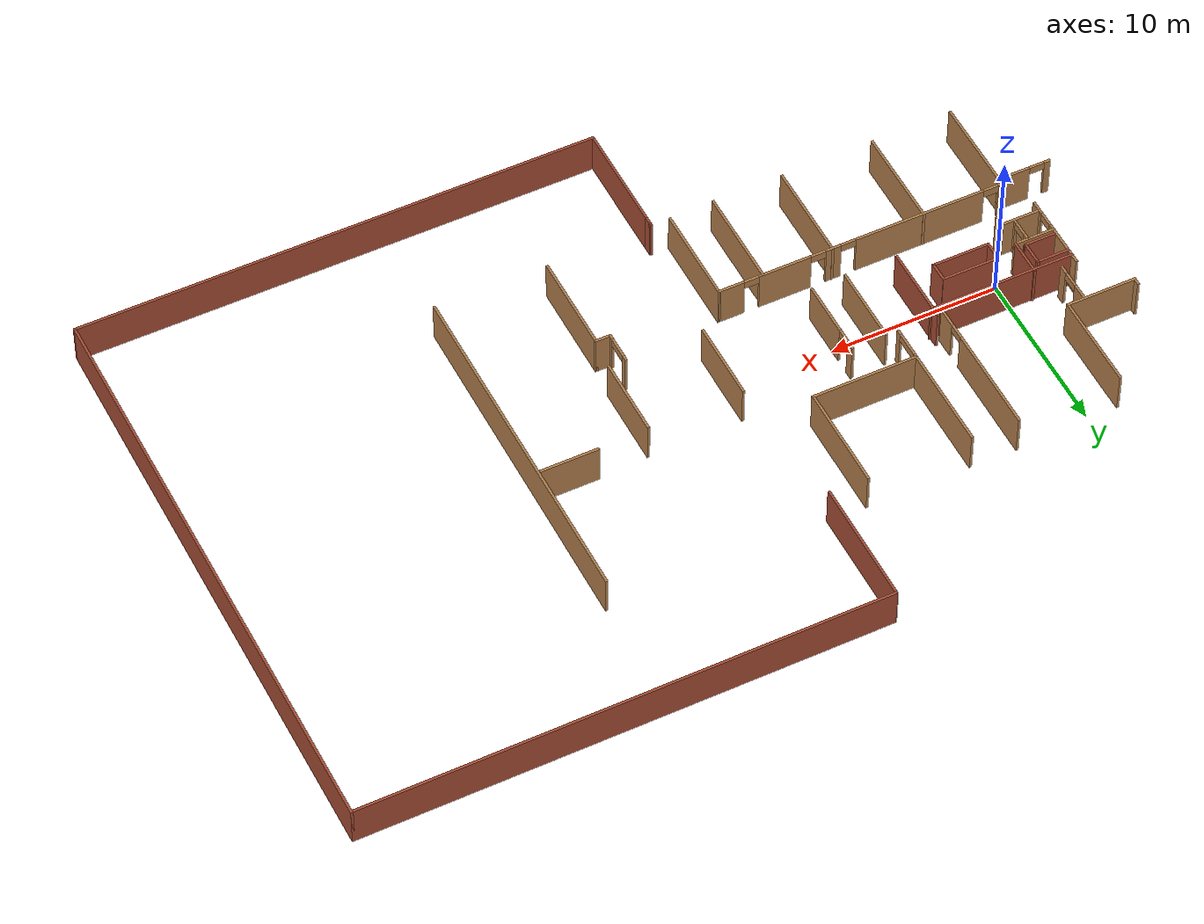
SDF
<sdf version="1.6">
 <model name="third_floor">
  <pose>-4.00866 -0.044756 0 0 -0 0</pose>
  <link name="Wall_100">
   <collision name="Wall_100_Collision">
    <geometry><box><size>4.75 0.15 2.5</size></box></geometry>
    <pose>0 0 1.25 0 -0 0</pose>
   </collision>
   <visual name="Wall_100_Visual">
    <pose>0 0 1.25 0 -0 0</pose>
    <geometry><box><size>4.75 0.15 2.5</size></box></geometry>
    <material>
     <script><uri>file://media/materials/scripts/gazebo.material</uri><name>Gazebo/Wood</name></script>
     <ambient>1 1 1 1</ambient>
    </material>
   </visual>
   <pose>11.9099 -0.263798 0 0 -0 1.5708</pose>
  </link>
  <link name="Wall_102">
   <collision name="Wall_102_Collision">
    <geometry><box><size>4.75 0.15 2.5</size></box></geometry>
    <pose>0 0 1.25 0 -0 0</pose>
   </collision>
   <visual name="Wall_102_Visual">
    <pose>0 0 1.25 0 -0 0</pose>
    <geometry><box><size>4.75 0.15 2.5</size></box></geometry>
    <material>
     <script><uri>file://media/materials/scripts/gazebo.material</uri><name>Gazebo/Bricks</name></script>
     <ambient>1 1 1 1</ambient>
    </material>
   </visual>
   <pose>8.79281 -0.211406 0 0 0 -1.5708</pose>
  </link>
  <link name="Wall_106">
   <pose>0.278929 -0.25793 0 0 0 -1.5708</pose>
   <visual name="Wall_106_Visual_0">
    <pose>-0.899616 0 1.25 0 -0 0</pose>
    <geometry><box><size>2.95077 0.15 2.5</size></box></geometry>
    <material>
     <script><uri>file://media/materials/scripts/gazebo.material</uri><name>Gazebo/Wood</name></script>
     <ambient>1 1 1 1</ambient>
    </material>
   </visual>
   <collision name="Wall_106_Collision_0">
    <geometry><box><size>2.95077 0.15 2.5</size></box></geometry>
    <pose>-0.899616 0 1.25 0 -0 0</pose>
   </collision>
   <visual name="Wall_106_Visual_1">
    <pose>1.92538 0 1.25 0 -0 0</pose>
    <geometry><box><size>0.899232 0.15 2.5</size></box></geometry>
    <material>
     <script><uri>file://media/materials/scripts/gazebo.material</uri><name>Gazebo/Wood</name></script>
     <ambient>1 1 1 1</ambient>
    </material>
   </visual>
   <collision name="Wall_106_Collision_1">
    <geometry><box><size>0.899232 0.15 2.5</size></box></geometry>
    <pose>1.92538 0 1.25 0 -0 0</pose>
   </collision>
   <visual name="Wall_106_Visual_2">
    <pose>1.02577 0 2.25 0 -0 0</pose>
    <geometry><box><size>0.9 0.15 0.5</size></box></geometry>
    <material>
     <script><uri>file://media/materials/scripts/gazebo.material</uri><name>Gazebo/Wood</name></script>
     <ambient>1 1 1 1</ambient>
    </material>
   </visual>
   <collision name="Wall_106_Collision_2">
    <geometry><box><size>0.9 0.15 0.5</size></box></geometry>
    <pose>1.02577 0 2.25 0 -0 0</pose>
   </collision>
  </link>
  <link name="Wall_125">
   <collision name="Wall_125_Collision">
    <geometry><box><size>2.47053 0.15 2.5</size></box></geometry>
    <pose>0 0 1.25 0 -0 0</pose>
   </collision>
   <visual name="Wall_125_Visual">
    <pose>0 0 1.25 0 -0 0</pose>
    <geometry><box><size>2.47053 0.15 2.5</size></box></geometry>
    <material>
     <script><uri>file://media/materials/scripts/gazebo.material</uri><name>Gazebo/Wood</name></script>
     <ambient>1 1 1 1</ambient>
    </material>
   </visual>
   <pose>1.43919 -2.00551 0 0 -0 0</pose>
  </link>
  <link name="Wall_126">
   <collision name="Wall_126_Collision">
    <geometry><box><size>0.685462 0.15 2.5</size></box></geometry>
    <pose>0 0 1.25 0 -0 0</pose>
   </collision>
   <visual name="Wall_126_Visual">
    <pose>0 0 1.25 0 -0 0</pose>
    <geometry><box><size>0.685462 0.15 2.5</size></box></geometry>
    <material>
     <script><uri>file://media/materials/scripts/gazebo.material</uri><name>Gazebo/Wood</name></script>
     <ambient>1 1 1 1</ambient>
    </material>
   </visual>
   <pose>2.61019 -2.27285 0 0 0 -1.5591</pose>
  </link>
  <link name="Wall_140">
   <collision name="Wall_140_Collision">
    <geometry><box><size>2 0.15 2.5</size></box></geometry>
    <pose>0 0 1.25 0 -0 0</pose>
   </collision>
   <visual name="Wall_140_Visual">
    <pose>0 0 1.25 0 -0 0</pose>
    <geometry><box><size>2 0.15 2.5</size></box></geometry>
    <material>
     <script><uri>file://media/materials/scripts/gazebo.material</uri><name>Gazebo/Bricks</name></script>
     <ambient>1 1 1 1</ambient>
    </material>
   </visual>
   <pose>1.24453 -0.176941 0 0 -0 0</pose>
  </link>
  <link name="Wall_141">
   <collision name="Wall_141_Collision">
    <geometry><box><size>1.5 0.15 2.5</size></box></geometry>
    <pose>0 0 1.25 0 -0 0</pose>
   </collision>
   <visual name="Wall_141_Visual">
    <pose>0 0 1.25 0 -0 0</pose>
    <geometry><box><size>1.5 0.15 2.5</size></box></geometry>
    <material>
     <script><uri>file://media/materials/scripts/gazebo.material</uri><name>Gazebo/Bricks</name></script>
     <ambient>1 1 1 1</ambient>
    </material>
   </visual>
   <pose>2.16953 0.498059 0 0 -0 1.5708</pose>
  </link>
  <link name="Wall_142">
   <collision name="Wall_142_Collision">
    <geometry><box><size>2 0.15 2.5</size></box></geometry>
    <pose>0 0 1.25 0 -0 0</pose>
   </collision>
   <visual name="Wall_142_Visual">
    <pose>0 0 1.25 0 -0 0</pose>
    <geometry><box><size>2 0.15 2.5</size></box></geometry>
    <material>
     <script><uri>file://media/materials/scripts/gazebo.material</uri><name>Gazebo/Bricks</name></script>
     <ambient>1 1 1 1</ambient>
    </material>
   </visual>
   <pose>1.24453 1.17306 0 0 -0 3.14159</pose>
  </link>
  <link name="Wall_144">
   <pose>1.85514 -1.2369 0 0 0 -1.5708</pose>
   <visual name="Wall_144_Visual_0">
    <pose>-0.55326 0 1.25 0 -0 0</pose>
    <geometry><box><size>0.393481 0.15 2.5</size></box></geometry>
    <material>
     <script><uri>file://media/materials/scripts/gazebo.material</uri><name>Gazebo/Wood</name></script>
     <ambient>1 1 1 1</ambient>
    </material>
   </visual>
   <collision name="Wall_144_Collision_0">
    <geometry><box><size>0.393481 0.15 2.5</size></box></geometry>
    <pose>-0.55326 0 1.25 0 -0 0</pose>
   </collision>
   <visual name="Wall_144_Visual_1">
    <pose>0.64674 0 1.25 0 -0 0</pose>
    <geometry><box><size>0.206519 0.15 2.5</size></box></geometry>
    <material>
     <script><uri>file://media/materials/scripts/gazebo.material</uri><name>Gazebo/Wood</name></script>
     <ambient>1 1 1 1</ambient>
    </material>
   </visual>
   <collision name="Wall_144_Collision_1">
    <geometry><box><size>0.206519 0.15 2.5</size></box></geometry>
    <pose>0.64674 0 1.25 0 -0 0</pose>
   </collision>
   <visual name="Wall_144_Visual_2">
    <pose>0.093481 0 2.25 0 -0 0</pose>
    <geometry><box><size>0.9 0.15 0.5</size></box></geometry>
    <material>
     <script><uri>file://media/materials/scripts/gazebo.material</uri><name>Gazebo/Wood</name></script>
     <ambient>1 1 1 1</ambient>
    </material>
   </visual>
   <collision name="Wall_144_Collision_2">
    <geometry><box><size>0.9 0.15 0.5</size></box></geometry>
    <pose>0.093481 0 2.25 0 -0 0</pose>
   </collision>
  </link>
  <link name="Wall_15">
   <collision name="Wall_15_Collision">
    <geometry><box><size>7.5 0.15 2.5</size></box></geometry>
    <pose>0 0 1.25 0 -0 0</pose>
   </collision>
   <visual name="Wall_15_Visual">
    <pose>0 0 1.25 0 -0 0</pose>
    <geometry><box><size>7.5 0.15 2.5</size></box></geometry>
    <material>
     <script><uri>file://media/materials/scripts/gazebo.material</uri><name>Gazebo/Bricks</name></script>
     <ambient>1 1 1 1</ambient>
    </material>
   </visual>
   <pose>19.6276 13.875 0 0 -0 1.5708</pose>
  </link>
  <link name="Wall_16">
   <collision name="Wall_16_Collision">
    <geometry><box><size>31 0.15 2.5</size></box></geometry>
    <pose>0 0 1.25 0 -0 0</pose>
   </collision>
   <visual name="Wall_16_Visual">
    <pose>0 0 1.25 0 -0 0</pose>
    <geometry><box><size>31 0.15 2.5</size></box></geometry>
    <material>
     <script><uri>file://media/materials/scripts/gazebo.material</uri><name>Gazebo/Bricks</name></script>
     <ambient>1 1 1 1</ambient>
    </material>
   </visual>
   <pose>35.0526 17.55 0 0 -0 0</pose>
  </link>
  <link name="Wall_17">
   <collision name="Wall_17_Collision">
    <geometry><box><size>35.25 0.15 2.5</size></box></geometry>
    <pose>0 0 1.25 0 -0 0</pose>
   </collision>
   <visual name="Wall_17_Visual">
    <pose>0 0 1.25 0 -0 0</pose>
    <geometry><box><size>35.25 0.15 2.5</size></box></geometry>
    <material>
     <script><uri>file://media/materials/scripts/gazebo.material</uri><name>Gazebo/Bricks</name></script>
     <ambient>1 1 1 1</ambient>
    </material>
   </visual>
   <pose>50.4776 -1e-06 0 0 0 -1.5708</pose>
  </link>
  <link name="Wall_18">
   <collision name="Wall_18_Collision">
    <geometry><box><size>31 0.15 2.5</size></box></geometry>
    <pose>0 0 1.25 0 -0 0</pose>
   </collision>
   <visual name="Wall_18_Visual">
    <pose>0 0 1.25 0 -0 0</pose>
    <geometry><box><size>31 0.15 2.5</size></box></geometry>
    <material>
     <script><uri>file://media/materials/scripts/gazebo.material</uri><name>Gazebo/Bricks</name></script>
     <ambient>1 1 1 1</ambient>
    </material>
   </visual>
   <pose>35.0526 -17.55 0 0 -0 3.14159</pose>
  </link>
  <link name="Wall_19">
   <collision name="Wall_19_Collision">
    <geometry><box><size>6.75 0.15 2.5</size></box></geometry>
    <pose>0 0 1.25 0 -0 0</pose>
   </collision>
   <visual name="Wall_19_Visual">
    <pose>0 0 1.25 0 -0 0</pose>
    <geometry><box><size>6.75 0.15 2.5</size></box></geometry>
    <material>
     <script><uri>file://media/materials/scripts/gazebo.material</uri><name>Gazebo/Bricks</name></script>
     <ambient>1 1 1 1</ambient>
    </material>
   </visual>
   <pose>19.6276 -14.25 0 0 -0 1.5708</pose>
  </link>
  <link name="Wall_20">
   <collision name="Wall_20_Collision">
    <geometry><box><size>0.5 0.15 2.5</size></box></geometry>
    <pose>0 0 1.25 0 -0 0</pose>
   </collision>
   <visual name="Wall_20_Visual">
    <pose>0 0 1.25 0 -0 0</pose>
    <geometry><box><size>0.5 0.15 2.5</size></box></geometry>
    <material>
     <script><uri>file://media/materials/scripts/gazebo.material</uri><name>Gazebo/Bricks</name></script>
     <ambient>1 1 1 1</ambient>
    </material>
   </visual>
   <pose>19.6276 -10.775 0 0 -0 1.5708</pose>
  </link>
  <link name="Wall_206">
   <collision name="Wall_206_Collision">
    <geometry><box><size>0.5 0.15 2.5</size></box></geometry>
    <pose>0 0 1.25 0 -0 0</pose>
   </collision>
   <visual name="Wall_206_Visual">
    <pose>0 0 1.25 0 -0 0</pose>
    <geometry><box><size>0.5 0.15 2.5</size></box></geometry>
    <material>
     <script><uri>file://media/materials/scripts/gazebo.material</uri><name>Gazebo/Wood</name></script>
     <ambient>1 1 1 1</ambient>
    </material>
   </visual>
   <pose>-1.89466 4.73513 0 0 0 -1.5708</pose>
  </link>
  <link name="Wall_207">
   <collision name="Wall_207_Collision">
    <geometry><box><size>4.25 0.15 2.5</size></box></geometry>
    <pose>0 0 1.25 0 -0 0</pose>
   </collision>
   <visual name="Wall_207_Visual">
    <pose>0 0 1.25 0 -0 0</pose>
    <geometry><box><size>4.25 0.15 2.5</size></box></geometry>
    <material>
     <script><uri>file://media/materials/scripts/gazebo.material</uri><name>Gazebo/Wood</name></script>
     <ambient>1 1 1 1</ambient>
    </material>
   </visual>
   <pose>0.155343 4.56013 0 0 -0 0</pose>
  </link>
  <link name="Wall_208">
   <collision name="Wall_208_Collision">
    <geometry><box><size>5.75 0.15 2.5</size></box></geometry>
    <pose>0 0 1.25 0 -0 0</pose>
   </collision>
   <visual name="Wall_208_Visual">
    <pose>0 0 1.25 0 -0 0</pose>
    <geometry><box><size>5.75 0.15 2.5</size></box></geometry>
    <material>
     <script><uri>file://media/materials/scripts/gazebo.material</uri><name>Gazebo/Wood</name></script>
     <ambient>1 1 1 1</ambient>
    </material>
   </visual>
   <pose>2.20534 7.36013 0 0 -0 1.5708</pose>
  </link>
  <link name="Wall_210">
   <pose>8.42243 6.14743 0 0 0 -1.5708</pose>
   <visual name="Wall_210_Visual_0">
    <pose>-1.03866 0 1.25 0 -0 0</pose>
    <geometry><box><size>6.42268 0.15 2.5</size></box></geometry>
    <material>
     <script><uri>file://media/materials/scripts/gazebo.material</uri><name>Gazebo/Wood</name></script>
     <ambient>1 1 1 1</ambient>
    </material>
   </visual>
   <collision name="Wall_210_Collision_0">
    <geometry><box><size>6.42268 0.15 2.5</size></box></geometry>
    <pose>-1.03866 0 1.25 0 -0 0</pose>
   </collision>
   <visual name="Wall_210_Visual_1">
    <pose>3.66134 0 1.25 0 -0 0</pose>
    <geometry><box><size>1.17732 0.15 2.5</size></box></geometry>
    <material>
     <script><uri>file://media/materials/scripts/gazebo.material</uri><name>Gazebo/Wood</name></script>
     <ambient>1 1 1 1</ambient>
    </material>
   </visual>
   <collision name="Wall_210_Collision_1">
    <geometry><box><size>1.17732 0.15 2.5</size></box></geometry>
    <pose>3.66134 0 1.25 0 -0 0</pose>
   </collision>
   <visual name="Wall_210_Visual_2">
    <pose>2.62268 0 2.25 0 -0 0</pose>
    <geometry><box><size>0.9 0.15 0.5</size></box></geometry>
    <material>
     <script><uri>file://media/materials/scripts/gazebo.material</uri><name>Gazebo/Wood</name></script>
     <ambient>1 1 1 1</ambient>
    </material>
   </visual>
   <collision name="Wall_210_Collision_2">
    <geometry><box><size>0.9 0.15 0.5</size></box></geometry>
    <pose>2.62268 0 2.25 0 -0 0</pose>
   </collision>
  </link>
  <link name="Wall_212">
   <pose>11.2002 6.20028 0 0 0 -1.5708</pose>
   <visual name="Wall_212_Visual_0">
    <pose>-0.906775 0 1.25 0 -0 0</pose>
    <geometry><box><size>6.43645 0.15 2.5</size></box></geometry>
    <material>
     <script><uri>file://media/materials/scripts/gazebo.material</uri><name>Gazebo/Wood</name></script>
     <ambient>1 1 1 1</ambient>
    </material>
   </visual>
   <collision name="Wall_212_Collision_0">
    <geometry><box><size>6.43645 0.15 2.5</size></box></geometry>
    <pose>-0.906775 0 1.25 0 -0 0</pose>
   </collision>
   <visual name="Wall_212_Visual_1">
    <pose>3.95675 0 1.25 0 -0 0</pose>
    <geometry><box><size>0.336496 0.15 2.5</size></box></geometry>
    <material>
     <script><uri>file://media/materials/scripts/gazebo.material</uri><name>Gazebo/Wood</name></script>
     <ambient>1 1 1 1</ambient>
    </material>
   </visual>
   <collision name="Wall_212_Collision_1">
    <geometry><box><size>0.336496 0.15 2.5</size></box></geometry>
    <pose>3.95675 0 1.25 0 -0 0</pose>
   </collision>
   <visual name="Wall_212_Visual_2">
    <pose>3.04998 0 2.25 0 -0 0</pose>
    <geometry><box><size>1.47705 0.15 0.5</size></box></geometry>
    <material>
     <script><uri>file://media/materials/scripts/gazebo.material</uri><name>Gazebo/Wood</name></script>
     <ambient>1 1 1 1</ambient>
    </material>
   </visual>
   <collision name="Wall_212_Collision_2">
    <geometry><box><size>1.47705 0.15 0.5</size></box></geometry>
    <pose>3.04998 0 2.25 0 -0 0</pose>
   </collision>
  </link>
  <link name="Wall_214">
   <collision name="Wall_214_Collision">
    <geometry><box><size>6.25 0.15 2.5</size></box></geometry>
    <pose>0 0 1.25 0 -0 0</pose>
   </collision>
   <visual name="Wall_214_Visual">
    <pose>0 0 1.25 0 -0 0</pose>
    <geometry><box><size>6.25 0.15 2.5</size></box></geometry>
    <material>
     <script><uri>file://media/materials/scripts/gazebo.material</uri><name>Gazebo/Wood</name></script>
     <ambient>1 1 1 1</ambient>
    </material>
   </visual>
   <pose>14.3223 4.1176 0 0 -0 0</pose>
  </link>
  <link name="Wall_215">
   <collision name="Wall_215_Collision">
    <geometry><box><size>6.25 0.15 2.5</size></box></geometry>
    <pose>0 0 1.25 0 -0 0</pose>
   </collision>
   <visual name="Wall_215_Visual">
    <pose>0 0 1.25 0 -0 0</pose>
    <geometry><box><size>6.25 0.15 2.5</size></box></geometry>
    <material>
     <script><uri>file://media/materials/scripts/gazebo.material</uri><name>Gazebo/Wood</name></script>
     <ambient>1 1 1 1</ambient>
    </material>
   </visual>
   <pose>17.3723 7.1676 0 0 -0 1.5708</pose>
  </link>
  <link name="Wall_218">
   <collision name="Wall_218_Collision">
    <geometry><box><size>3.5 0.15 2.5</size></box></geometry>
    <pose>0 0 1.25 0 -0 0</pose>
   </collision>
   <visual name="Wall_218_Visual">
    <pose>0 0 1.25 0 -0 0</pose>
    <geometry><box><size>3.5 0.15 2.5</size></box></geometry>
    <material>
     <script><uri>file://media/materials/scripts/gazebo.material</uri><name>Gazebo/Wood</name></script>
     <ambient>1 1 1 1</ambient>
    </material>
   </visual>
   <pose>30.7997 2.23126 0 0 -0 0</pose>
  </link>
  <link name="Wall_22">
   <collision name="Wall_22_Collision">
    <geometry><box><size>0.25 0.15 2.5</size></box></geometry>
    <pose>0 0 1.25 0 -0 0</pose>
   </collision>
   <visual name="Wall_22_Visual">
    <pose>0 0 1.25 0 -0 0</pose>
    <geometry><box><size>0.25 0.15 2.5</size></box></geometry>
    <material>
     <script><uri>file://media/materials/scripts/gazebo.material</uri><name>Gazebo/Bricks</name></script>
     <ambient>1 1 1 1</ambient>
    </material>
   </visual>
   <pose>19.6276 -10.55 0 0 -0 1.5708</pose>
  </link>
  <link name="Wall_222">
   <pose>1.18415 3.29945 0 0 0 -1.5708</pose>
   <visual name="Wall_222_Visual_0">
    <pose>-0.75534 0 1.25 0 -0 0</pose>
    <geometry><box><size>0.989321 0.15 2.5</size></box></geometry>
    <material>
     <script><uri>file://media/materials/scripts/gazebo.material</uri><name>Gazebo/Wood</name></script>
     <ambient>1 1 1 1</ambient>
    </material>
   </visual>
   <collision name="Wall_222_Collision_0">
    <geometry><box><size>0.989321 0.15 2.5</size></box></geometry>
    <pose>-0.75534 0 1.25 0 -0 0</pose>
   </collision>
   <visual name="Wall_222_Visual_1">
    <pose>0.992127 0 1.25 0 -0 0</pose>
    <geometry><box><size>0.515747 0.15 2.5</size></box></geometry>
    <material>
     <script><uri>file://media/materials/scripts/gazebo.material</uri><name>Gazebo/Wood</name></script>
     <ambient>1 1 1 1</ambient>
    </material>
   </visual>
   <collision name="Wall_222_Collision_1">
    <geometry><box><size>0.515747 0.15 2.5</size></box></geometry>
    <pose>0.992127 0 1.25 0 -0 0</pose>
   </collision>
   <visual name="Wall_222_Visual_2">
    <pose>0.236787 0 2.25 0 -0 0</pose>
    <geometry><box><size>0.994932 0.15 0.5</size></box></geometry>
    <material>
     <script><uri>file://media/materials/scripts/gazebo.material</uri><name>Gazebo/Wood</name></script>
     <ambient>1 1 1 1</ambient>
    </material>
   </visual>
   <collision name="Wall_222_Collision_2">
    <geometry><box><size>0.994932 0.15 0.5</size></box></geometry>
    <pose>0.236787 0 2.25 0 -0 0</pose>
   </collision>
  </link>
  <link name="Wall_235">
   <collision name="Wall_235_Collision">
    <geometry><box><size>8.75 0.15 2.5</size></box></geometry>
    <pose>0 0 1.25 0 -0 0</pose>
   </collision>
   <visual name="Wall_235_Visual">
    <pose>0 0 1.25 0 -0 0</pose>
    <geometry><box><size>8.75 0.15 2.5</size></box></geometry>
    <material>
     <script><uri>file://media/materials/scripts/gazebo.material</uri><name>Gazebo/Bricks</name></script>
     <ambient>1 1 1 1</ambient>
    </material>
   </visual>
   <pose>4.57762 1.55039 0 0 -0 0</pose>
  </link>
  <link name="Wall_237">
   <collision name="Wall_237_Collision">
    <geometry><box><size>2.25 0.15 2.5</size></box></geometry>
    <pose>0 0 1.25 0 -0 0</pose>
   </collision>
   <visual name="Wall_237_Visual">
    <pose>0 0 1.25 0 -0 0</pose>
    <geometry><box><size>2.25 0.15 2.5</size></box></geometry>
    <material>
     <script><uri>file://media/materials/scripts/gazebo.material</uri><name>Gazebo/Bricks</name></script>
     <ambient>1 1 1 1</ambient>
    </material>
   </visual>
   <pose>2.62716 0.572136 0 0 0 -1.5708</pose>
  </link>
  <link name="Wall_238">
   <collision name="Wall_238_Collision">
    <geometry><box><size>2.5 0.15 2.5</size></box></geometry>
    <pose>0 0 1.25 0 -0 0</pose>
   </collision>
   <visual name="Wall_238_Visual">
    <pose>0 0 1.25 0 -0 0</pose>
    <geometry><box><size>2.5 0.15 2.5</size></box></geometry>
    <material>
     <script><uri>file://media/materials/scripts/gazebo.material</uri><name>Gazebo/Wood</name></script>
     <ambient>1 1 1 1</ambient>
    </material>
   </visual>
   <pose>1.45216 -0.477864 0 0 -0 3.14159</pose>
  </link>
  <link name="Wall_247">
   <collision name="Wall_247_Collision">
    <geometry><box><size>1.25 0.15 2.5</size></box></geometry>
    <pose>0 0 1.25 0 -0 0</pose>
   </collision>
   <visual name="Wall_247_Visual">
    <pose>0 0 1.25 0 -0 0</pose>
    <geometry><box><size>1.25 0.15 2.5</size></box></geometry>
    <material>
     <script><uri>file://media/materials/scripts/gazebo.material</uri><name>Gazebo/Bricks</name></script>
     <ambient>1 1 1 1</ambient>
    </material>
   </visual>
   <pose>3.95505 -0.559625 0 0 0 -1.5708</pose>
  </link>
  <link name="Wall_248">
   <collision name="Wall_248_Collision">
    <geometry><box><size>3.5 0.15 2.5</size></box></geometry>
    <pose>0 0 1.25 0 -0 0</pose>
   </collision>
   <visual name="Wall_248_Visual">
    <pose>0 0 1.25 0 -0 0</pose>
    <geometry><box><size>3.5 0.15 2.5</size></box></geometry>
    <material>
     <script><uri>file://media/materials/scripts/gazebo.material</uri><name>Gazebo/Bricks</name></script>
     <ambient>1 1 1 1</ambient>
    </material>
   </visual>
   <pose>5.63005 -1.10963 0 0 -0 0</pose>
  </link>
  <link name="Wall_249">
   <collision name="Wall_249_Collision">
    <geometry><box><size>1.25 0.15 2.5</size></box></geometry>
    <pose>0 0 1.25 0 -0 0</pose>
   </collision>
   <visual name="Wall_249_Visual">
    <pose>0 0 1.25 0 -0 0</pose>
    <geometry><box><size>1.25 0.15 2.5</size></box></geometry>
    <material>
     <script><uri>file://media/materials/scripts/gazebo.material</uri><name>Gazebo/Bricks</name></script>
     <ambient>1 1 1 1</ambient>
    </material>
   </visual>
   <pose>7.30505 -0.559625 0 0 -0 1.5708</pose>
  </link>
  <link name="Wall_250">
   <collision name="Wall_250_Collision">
    <geometry><box><size>3.5 0.15 2.5</size></box></geometry>
    <pose>0 0 1.25 0 -0 0</pose>
   </collision>
   <visual name="Wall_250_Visual">
    <pose>0 0 1.25 0 -0 0</pose>
    <geometry><box><size>3.5 0.15 2.5</size></box></geometry>
    <material>
     <script><uri>file://media/materials/scripts/gazebo.material</uri><name>Gazebo/Bricks</name></script>
     <ambient>1 1 1 1</ambient>
    </material>
   </visual>
   <pose>5.63005 -0.009625 0 0 -0 3.14159</pose>
  </link>
  <link name="Wall_31">
   <collision name="Wall_31_Collision">
    <geometry><box><size>4.75 0.15 2.5</size></box></geometry>
    <pose>0 0 1.25 0 -0 0</pose>
   </collision>
   <visual name="Wall_31_Visual">
    <pose>0 0 1.25 0 -0 0</pose>
    <geometry><box><size>4.75 0.15 2.5</size></box></geometry>
    <material>
     <script><uri>file://media/materials/scripts/gazebo.material</uri><name>Gazebo/Wood</name></script>
     <ambient>1 1 1 1</ambient>
    </material>
   </visual>
   <pose>26.1224 -0.238889 0 0 0 -1.5708</pose>
  </link>
  <link name="Wall_36">
   <collision name="Wall_36_Collision">
    <geometry><box><size>20.75 0.15 2.5</size></box></geometry>
    <pose>0 0 1.25 0 -0 0</pose>
   </collision>
   <visual name="Wall_36_Visual">
    <pose>0 0 1.25 0 -0 0</pose>
    <geometry><box><size>20.75 0.15 2.5</size></box></geometry>
    <material>
     <script><uri>file://media/materials/scripts/gazebo.material</uri><name>Gazebo/Wood</name></script>
     <ambient>1 1 1 1</ambient>
    </material>
   </visual>
   <pose>32.6341 -0.084723 0 0 0 -1.5708</pose>
  </link>
  <link name="Wall_65">
   <pose>-0.385219 -4.94504 0 0 -0 0</pose>
   <visual name="Wall_65_Visual_0">
    <pose>-1.43177 0 1.25 0 -0 0</pose>
    <geometry><box><size>0.386464 0.15 2.5</size></box></geometry>
    <material>
     <script><uri>file://media/materials/scripts/gazebo.material</uri><name>Gazebo/Wood</name></script>
     <ambient>1 1 1 1</ambient>
    </material>
   </visual>
   <collision name="Wall_65_Collision_0">
    <geometry><box><size>0.386464 0.15 2.5</size></box></geometry>
    <pose>-1.43177 0 1.25 0 -0 0</pose>
   </collision>
   <visual name="Wall_65_Visual_1">
    <pose>0.643232 0 1.25 0 -0 0</pose>
    <geometry><box><size>1.96354 0.15 2.5</size></box></geometry>
    <material>
     <script><uri>file://media/materials/scripts/gazebo.material</uri><name>Gazebo/Wood</name></script>
     <ambient>1 1 1 1</ambient>
    </material>
   </visual>
   <collision name="Wall_65_Collision_1">
    <geometry><box><size>1.96354 0.15 2.5</size></box></geometry>
    <pose>0.643232 0 1.25 0 -0 0</pose>
   </collision>
   <visual name="Wall_65_Visual_2">
    <pose>-0.788536 0 2.25 0 -0 0</pose>
    <geometry><box><size>0.9 0.15 0.5</size></box></geometry>
    <material>
     <script><uri>file://media/materials/scripts/gazebo.material</uri><name>Gazebo/Wood</name></script>
     <ambient>1 1 1 1</ambient>
    </material>
   </visual>
   <collision name="Wall_65_Collision_2">
    <geometry><box><size>0.9 0.15 0.5</size></box></geometry>
    <pose>-0.788536 0 2.25 0 -0 0</pose>
   </collision>
  </link>
  <link name="Wall_68">
   <collision name="Wall_68_Collision">
    <geometry><box><size>0.5 0.15 2.5</size></box></geometry>
    <pose>0 0 1.25 0 -0 0</pose>
   </collision>
   <visual name="Wall_68_Visual">
    <pose>0 0 1.25 0 -0 0</pose>
    <geometry><box><size>0.5 0.15 2.5</size></box></geometry>
    <material>
     <script><uri>file://media/materials/scripts/gazebo.material</uri><name>Gazebo/Grey</name></script>
     <ambient>1 1 1 1</ambient>
    </material>
   </visual>
   <pose>1.16478 -4.77004 0 0 -0 1.5708</pose>
  </link>
  <link name="Wall_69">
   <pose>9.83978 -4.59504 0 0 -0 0</pose>
   <visual name="Wall_69_Visual_0">
    <pose>-8.57685 0 1.25 0 -0 0</pose>
    <geometry><box><size>0.346295 0.15 2.5</size></box></geometry>
    <material>
     <script><uri>file://media/materials/scripts/gazebo.material</uri><name>Gazebo/Wood</name></script>
     <ambient>1 1 1 1</ambient>
    </material>
   </visual>
   <collision name="Wall_69_Collision_0">
    <geometry><box><size>0.346295 0.15 2.5</size></box></geometry>
    <pose>-8.57685 0 1.25 0 -0 0</pose>
   </collision>
   <visual name="Wall_69_Visual_1">
    <pose>-3.56557 0 1.25 0 -0 0</pose>
    <geometry><box><size>7.87626 0.15 2.5</size></box></geometry>
    <material>
     <script><uri>file://media/materials/scripts/gazebo.material</uri><name>Gazebo/Wood</name></script>
     <ambient>1 1 1 1</ambient>
    </material>
   </visual>
   <collision name="Wall_69_Collision_1">
    <geometry><box><size>7.87626 0.15 2.5</size></box></geometry>
    <pose>-3.56557 0 1.25 0 -0 0</pose>
   </collision>
   <visual name="Wall_69_Visual_2">
    <pose>1.73576 0 1.25 0 -0 0</pose>
    <geometry><box><size>0.926411 0.15 2.5</size></box></geometry>
    <material>
     <script><uri>file://media/materials/scripts/gazebo.material</uri><name>Gazebo/Wood</name></script>
     <ambient>1 1 1 1</ambient>
    </material>
   </visual>
   <collision name="Wall_69_Collision_2">
    <geometry><box><size>0.926411 0.15 2.5</size></box></geometry>
    <pose>1.73576 0 1.25 0 -0 0</pose>
   </collision>
   <visual name="Wall_69_Visual_3">
    <pose>4.67699 0 1.25 0 -0 0</pose>
    <geometry><box><size>3.15605 0.15 2.5</size></box></geometry>
    <material>
     <script><uri>file://media/materials/scripts/gazebo.material</uri><name>Gazebo/Wood</name></script>
     <ambient>1 1 1 1</ambient>
    </material>
   </visual>
   <collision name="Wall_69_Collision_3">
    <geometry><box><size>3.15605 0.15 2.5</size></box></geometry>
    <pose>4.67699 0 1.25 0 -0 0</pose>
   </collision>
   <visual name="Wall_69_Visual_4">
    <pose>7.95251 0 1.25 0 -0 0</pose>
    <geometry><box><size>1.59498 0.15 2.5</size></box></geometry>
    <material>
     <script><uri>file://media/materials/scripts/gazebo.material</uri><name>Gazebo/Wood</name></script>
     <ambient>1 1 1 1</ambient>
    </material>
   </visual>
   <collision name="Wall_69_Collision_4">
    <geometry><box><size>1.59498 0.15 2.5</size></box></geometry>
    <pose>7.95251 0 1.25 0 -0 0</pose>
   </collision>
   <visual name="Wall_69_Visual_5">
    <pose>-7.95371 0 2.25 0 -0 0</pose>
    <geometry><box><size>0.9 0.15 0.5</size></box></geometry>
    <material>
     <script><uri>file://media/materials/scripts/gazebo.material</uri><name>Gazebo/Wood</name></script>
     <ambient>1 1 1 1</ambient>
    </material>
   </visual>
   <collision name="Wall_69_Collision_5">
    <geometry><box><size>0.9 0.15 0.5</size></box></geometry>
    <pose>-7.95371 0 2.25 0 -0 0</pose>
   </collision>
   <visual name="Wall_69_Visual_6">
    <pose>0.822554 0 2.25 0 -0 0</pose>
    <geometry><box><size>0.9 0.15 0.5</size></box></geometry>
    <material>
     <script><uri>file://media/materials/scripts/gazebo.material</uri><name>Gazebo/Wood</name></script>
     <ambient>1 1 1 1</ambient>
    </material>
   </visual>
   <collision name="Wall_69_Collision_6">
    <geometry><box><size>0.9 0.15 0.5</size></box></geometry>
    <pose>0.822554 0 2.25 0 -0 0</pose>
   </collision>
   <visual name="Wall_69_Visual_7">
    <pose>2.64897 0 2.25 0 -0 0</pose>
    <geometry><box><size>0.9 0.15 0.5</size></box></geometry>
    <material>
     <script><uri>file://media/materials/scripts/gazebo.material</uri><name>Gazebo/Wood</name></script>
     <ambient>1 1 1 1</ambient>
    </material>
   </visual>
   <collision name="Wall_69_Collision_7">
    <geometry><box><size>0.9 0.15 0.5</size></box></geometry>
    <pose>2.64897 0 2.25 0 -0 0</pose>
   </collision>
   <visual name="Wall_69_Visual_8">
    <pose>6.70502 0 2.25 0 -0 0</pose>
    <geometry><box><size>0.9 0.15 0.5</size></box></geometry>
    <material>
     <script><uri>file://media/materials/scripts/gazebo.material</uri><name>Gazebo/Wood</name></script>
     <ambient>1 1 1 1</ambient>
    </material>
   </visual>
   <collision name="Wall_69_Collision_8">
    <geometry><box><size>0.9 0.15 0.5</size></box></geometry>
    <pose>6.70502 0 2.25 0 -0 0</pose>
   </collision>
  </link>
  <link name="Wall_70">
   <collision name="Wall_70_Collision">
    <geometry><box><size>5.92455 0.15 2.5</size></box></geometry>
    <pose>0 0 1.25 0 -0 0</pose>
   </collision>
   <visual name="Wall_70_Visual">
    <pose>0 0 1.25 0 -0 0</pose>
    <geometry><box><size>5.92455 0.15 2.5</size></box></geometry>
    <material>
     <script><uri>file://media/materials/scripts/gazebo.material</uri><name>Gazebo/Wood</name></script>
     <ambient>1 1 1 1</ambient>
    </material>
   </visual>
   <pose>18.5139 -7.48232 0 0 0 -1.57112</pose>
  </link>
  <link name="Wall_84">
   <collision name="Wall_84_Collision">
    <geometry><box><size>6 0.15 2.5</size></box></geometry>
    <pose>0 0 1.25 0 -0 0</pose>
   </collision>
   <visual name="Wall_84_Visual">
    <pose>0 0 1.25 0 -0 0</pose>
    <geometry><box><size>6 0.15 2.5</size></box></geometry>
    <material>
     <script><uri>file://media/materials/scripts/gazebo.material</uri><name>Gazebo/Wood</name></script>
     <ambient>1 1 1 1</ambient>
    </material>
   </visual>
   <pose>1.16478 -7.52004 0 0 0 -1.5708</pose>
  </link>
  <link name="Wall_86">
   <collision name="Wall_86_Collision">
    <geometry><box><size>6 0.15 2.5</size></box></geometry>
    <pose>0 0 1.25 0 -0 0</pose>
   </collision>
   <visual name="Wall_86_Visual">
    <pose>0 0 1.25 0 -0 0</pose>
    <geometry><box><size>6 0.15 2.5</size></box></geometry>
    <material>
     <script><uri>file://media/materials/scripts/gazebo.material</uri><name>Gazebo/Wood</name></script>
     <ambient>1 1 1 1</ambient>
    </material>
   </visual>
   <pose>6.04732 -7.50311 0 0 0 -1.5708</pose>
  </link>
  <link name="Wall_88">
   <collision name="Wall_88_Collision">
    <geometry><box><size>6 0.15 2.5</size></box></geometry>
    <pose>0 0 1.25 0 -0 0</pose>
   </collision>
   <visual name="Wall_88_Visual">
    <pose>0 0 1.25 0 -0 0</pose>
    <geometry><box><size>6 0.15 2.5</size></box></geometry>
    <material>
     <script><uri>file://media/materials/scripts/gazebo.material</uri><name>Gazebo/Wood</name></script>
     <ambient>1 1 1 1</ambient>
    </material>
   </visual>
   <pose>11.6371 -7.50311 0 0 0 -1.5708</pose>
  </link>
  <link name="Wall_90">
   <collision name="Wall_90_Collision">
    <geometry><box><size>6 0.15 2.5</size></box></geometry>
    <pose>0 0 1.25 0 -0 0</pose>
   </collision>
   <visual name="Wall_90_Visual">
    <pose>0 0 1.25 0 -0 0</pose>
    <geometry><box><size>6 0.15 2.5</size></box></geometry>
    <material>
     <script><uri>file://media/materials/scripts/gazebo.material</uri><name>Gazebo/Wood</name></script>
     <ambient>1 1 1 1</ambient>
    </material>
   </visual>
   <pose>15.8472 -7.5208 0 0 0 -1.5708</pose>
  </link>
  <link name="Wall_92">
   <collision name="Wall_92_Collision">
    <geometry><box><size>6 0.15 2.5</size></box></geometry>
    <pose>0 0 1.25 0 -0 0</pose>
   </collision>
   <visual name="Wall_92_Visual">
    <pose>0 0 1.25 0 -0 0</pose>
    <geometry><box><size>6 0.15 2.5</size></box></geometry>
    <material>
     <script><uri>file://media/materials/scripts/gazebo.material</uri><name>Gazebo/Wood</name></script>
     <ambient>1 1 1 1</ambient>
    </material>
   </visual>
   <pose>25.9547 -7.36479 0 0 -0 1.5708</pose>
  </link>
  <link name="Wall_93">
   <collision name="Wall_93_Collision">
    <geometry><box><size>1 0.15 2.5</size></box></geometry>
    <pose>0 0 1.25 0 -0 0</pose>
   </collision>
   <visual name="Wall_93_Visual">
    <pose>0 0 1.25 0 -0 0</pose>
    <geometry><box><size>1 0.15 2.5</size></box></geometry>
    <material>
     <script><uri>file://media/materials/scripts/gazebo.material</uri><name>Gazebo/Wood</name></script>
     <ambient>1 1 1 1</ambient>
    </material>
   </visual>
   <pose>25.5297 -4.43978 0 0 -0 3.14159</pose>
  </link>
  <link name="Wall_94">
   <pose>25.1047 -3.51479 0 0 -0 1.5708</pose>
   <visual name="Wall_94_Visual_0">
    <pose>-0.827274 0 1.25 0 -0 0</pose>
    <geometry><box><size>0.345451 0.15 2.5</size></box></geometry>
    <material>
     <script><uri>file://media/materials/scripts/gazebo.material</uri><name>Gazebo/Wood</name></script>
     <ambient>1 1 1 1</ambient>
    </material>
   </visual>
   <collision name="Wall_94_Collision_0">
    <geometry><box><size>0.345451 0.15 2.5</size></box></geometry>
    <pose>-0.827274 0 1.25 0 -0 0</pose>
   </collision>
   <visual name="Wall_94_Visual_1">
    <pose>0.839296 0 1.25 0 -0 0</pose>
    <geometry><box><size>0.321408 0.15 2.5</size></box></geometry>
    <material>
     <script><uri>file://media/materials/scripts/gazebo.material</uri><name>Gazebo/Wood</name></script>
     <ambient>1 1 1 1</ambient>
    </material>
   </visual>
   <collision name="Wall_94_Collision_1">
    <geometry><box><size>0.321408 0.15 2.5</size></box></geometry>
    <pose>0.839296 0 1.25 0 -0 0</pose>
   </collision>
   <visual name="Wall_94_Visual_2">
    <pose>0.012022 0 2.25 0 -0 0</pose>
    <geometry><box><size>1.33314 0.15 0.5</size></box></geometry>
    <material>
     <script><uri>file://media/materials/scripts/gazebo.material</uri><name>Gazebo/Wood</name></script>
     <ambient>1 1 1 1</ambient>
    </material>
   </visual>
   <collision name="Wall_94_Collision_2">
    <geometry><box><size>1.33314 0.15 0.5</size></box></geometry>
    <pose>0.012022 0 2.25 0 -0 0</pose>
   </collision>
  </link>
  <link name="Wall_96">
   <collision name="Wall_96_Collision">
    <geometry><box><size>4.75 0.15 2.5</size></box></geometry>
    <pose>0 0 1.25 0 -0 0</pose>
   </collision>
   <visual name="Wall_96_Visual">
    <pose>0 0 1.25 0 -0 0</pose>
    <geometry><box><size>4.75 0.15 2.5</size></box></geometry>
    <material>
     <script><uri>file://media/materials/scripts/gazebo.material</uri><name>Gazebo/Wood</name></script>
     <ambient>1 1 1 1</ambient>
    </material>
   </visual>
   <pose>20.5168 -0.217274 0 0 -0 1.5708</pose>
  </link>
  <link name="Wall_98">
   <pose>13.957 -0.211406 0 0 0 -1.5708</pose>
   <visual name="Wall_98_Visual_0">
    <pose>-2.10172 0 1.25 0 -0 0</pose>
    <geometry><box><size>0.546552 0.15 2.5</size></box></geometry>
    <material>
     <script><uri>file://media/materials/scripts/gazebo.material</uri><name>Gazebo/Wood</name></script>
     <ambient>1 1 1 1</ambient>
    </material>
   </visual>
   <collision name="Wall_98_Collision_0">
    <geometry><box><size>0.546552 0.15 2.5</size></box></geometry>
    <pose>-2.10172 0 1.25 0 -0 0</pose>
   </collision>
   <visual name="Wall_98_Visual_1">
    <pose>0.723276 0 1.25 0 -0 0</pose>
    <geometry><box><size>3.30345 0.15 2.5</size></box></geometry>
    <material>
     <script><uri>file://media/materials/scripts/gazebo.material</uri><name>Gazebo/Wood</name></script>
     <ambient>1 1 1 1</ambient>
    </material>
   </visual>
   <collision name="Wall_98_Collision_1">
    <geometry><box><size>3.30345 0.15 2.5</size></box></geometry>
    <pose>0.723276 0 1.25 0 -0 0</pose>
   </collision>
   <visual name="Wall_98_Visual_2">
    <pose>-1.37845 0 2.25 0 -0 0</pose>
    <geometry><box><size>0.9 0.15 0.5</size></box></geometry>
    <material>
     <script><uri>file://media/materials/scripts/gazebo.material</uri><name>Gazebo/Wood</name></script>
     <ambient>1 1 1 1</ambient>
    </material>
   </visual>
   <collision name="Wall_98_Collision_2">
    <geometry><box><size>0.9 0.15 0.5</size></box></geometry>
    <pose>-1.37845 0 2.25 0 -0 0</pose>
   </collision>
  </link>
  <static>1</static>
 </model>
</sdf>
